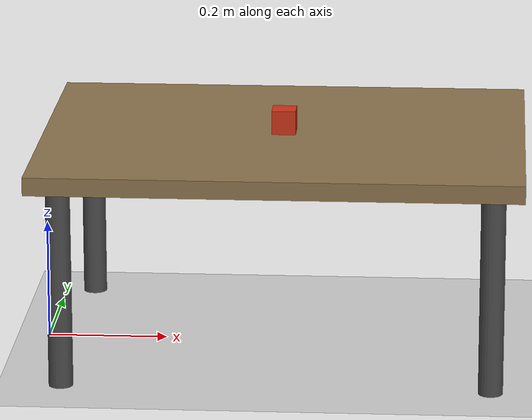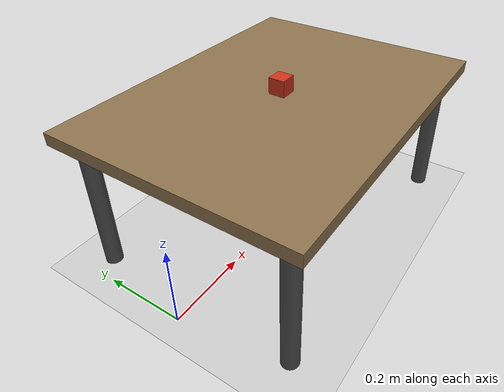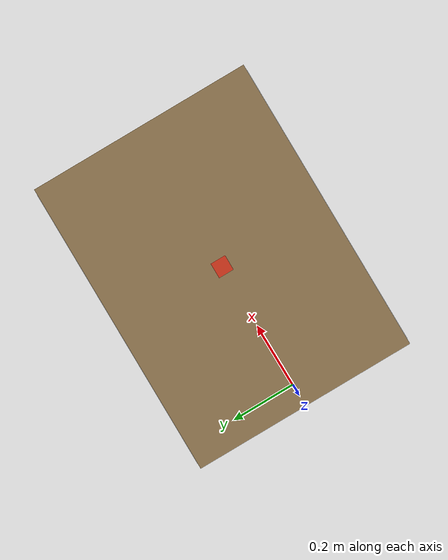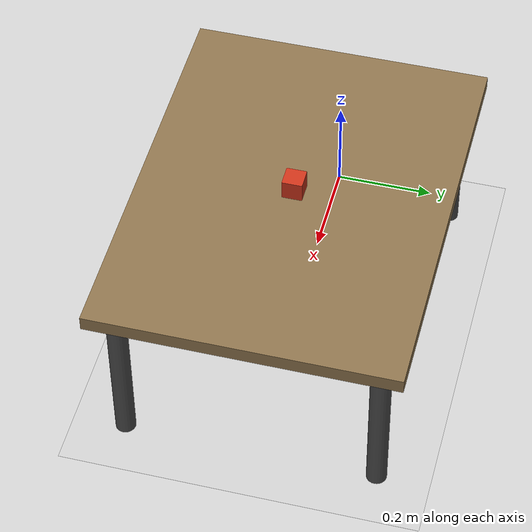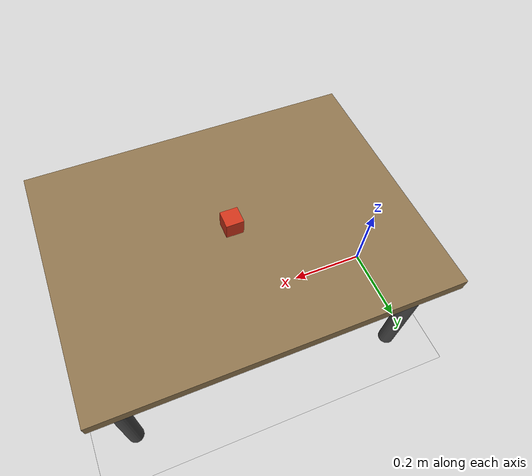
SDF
<?xml version="1.0"?>
<sdf version="1.6">
<world name="agvpicker_world">
  <gravity>0 0 -9.81</gravity>
  <physics type="ode">
    <max_step_size>0.001</max_step_size>
    <real_time_factor>1.0</real_time_factor>
    <real_time_update_rate>1000</real_time_update_rate>
  </physics>

  <scene>
    <ambient>0.6 0.6 0.6 1</ambient>
    <background>0.8 0.85 0.9 1</background>
    <shadows>true</shadows>
  </scene>

  <!-- Lighting -->
  <light name="sun" type="directional">
    <cast_shadows>true</cast_shadows>
    <pose>2 3 5 0 0 0</pose>
    <diffuse>0.9 0.9 0.85 1</diffuse>
    <specular>0.3 0.3 0.3 1</specular>
    <direction>-0.3 -0.4 -1</direction>
  </light>
  <light name="fill" type="directional">
    <cast_shadows>false</cast_shadows>
    <pose>0 0 4 0 0 0</pose>
    <diffuse>0.4 0.4 0.45 1</diffuse>
    <direction>0.2 0.3 -1</direction>
  </light>

  <!-- Ground plane -->
  <include><uri>model://ground_plane</uri></include>

  <!-- Work table -->
  <model name="work_table">
    <static>true</static>
    <pose>0.4 0 0.35 0 0 0</pose>
    <link name="table_top">
      <collision name="c">
        <geometry><box><size>0.8 0.6 0.03</size></box></geometry>
      </collision>
      <visual name="v">
        <geometry><box><size>0.8 0.6 0.03</size></box></geometry>
        <material>
          <ambient>0.55 0.45 0.3 1</ambient>
          <diffuse>0.55 0.45 0.3 1</diffuse>
        </material>
      </visual>
    </link>
  </model>

  <!-- Table legs -->
  <model name="leg1"><static>true</static>
    <pose>0.05 -0.25 0.17 0 0 0</pose>
    <link name="l"><visual name="v"><geometry><cylinder><radius>0.02</radius><length>0.34</length></cylinder></geometry>
      <material><ambient>0.3 0.3 0.3 1</ambient></material></visual></link>
  </model>
  <model name="leg2"><static>true</static>
    <pose>0.05 0.25 0.17 0 0 0</pose>
    <link name="l"><visual name="v"><geometry><cylinder><radius>0.02</radius><length>0.34</length></cylinder></geometry>
      <material><ambient>0.3 0.3 0.3 1</ambient></material></visual></link>
  </model>
  <model name="leg3"><static>true</static>
    <pose>0.75 -0.25 0.17 0 0 0</pose>
    <link name="l"><visual name="v"><geometry><cylinder><radius>0.02</radius><length>0.34</length></cylinder></geometry>
      <material><ambient>0.3 0.3 0.3 1</ambient></material></visual></link>
  </model>
  <model name="leg4"><static>true</static>
    <pose>0.75 0.25 0.17 0 0 0</pose>
    <link name="l"><visual name="v"><geometry><cylinder><radius>0.02</radius><length>0.34</length></cylinder></geometry>
      <material><ambient>0.3 0.3 0.3 1</ambient></material></visual></link>
  </model>

  <!-- Sample pick object (cube) -->
  <model name="pick_cube">
    <pose>0.4 0.0 0.385 0 0 0</pose>
    <link name="cube_link">
      <inertial><mass value="0.1"/><inertia><ixx>0.00004</ixx><iyy>0.00004</iyy><izz>0.00004</izz></inertia></inertial>
      <collision name="c"><geometry><box><size>0.04 0.04 0.04</size></box></geometry></collision>
      <visual name="v"><geometry><box><size>0.04 0.04 0.04</size></box></geometry>
        <material><ambient>0.8 0.2 0.1 1</ambient><diffuse>0.8 0.2 0.1 1</diffuse></material>
      </visual>
    </link>
  </model>

</world>
</sdf>
